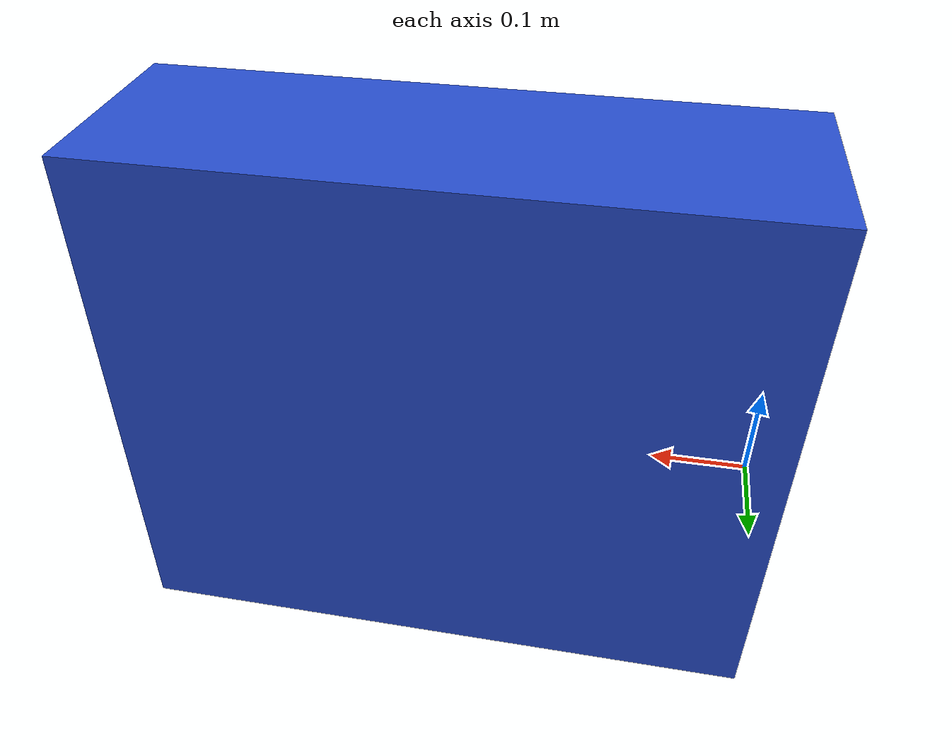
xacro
<?xml version="1.0"?>
<robot xmlns:xacro="http://www.ros.org/wiki/xacro" name="myobst" >
    <link name="myobst">
        <inertial>
            <origin xyz="0 0 0" />
            <mass value="0.3" />
        <inertia  ixx="0.001" ixy="0"  ixz="0"  iyy="0.001"  iyz="0"  izz="0.001" />
        </inertial>
        <visual>
            <origin xyz="0.3 0.1 0.15"/>
            <geometry>
                <box size="0.6 0.2 0.5" />
            </geometry>
        </visual>
        <collision>
            <origin xyz="0.3 0.1 0.15"/>
            <geometry>
                <box size="0.6 0.2 0.5" />
            </geometry>
        </collision>
    </link>
    <gazebo reference="myobst">
        <material>Gazebo/Blue</material>
        <mu1>0.4</mu1>
        <mu2>0.3</mu2>
        <kp>10000</kp>
        <kd>1</kd>
    </gazebo>
</robot>
